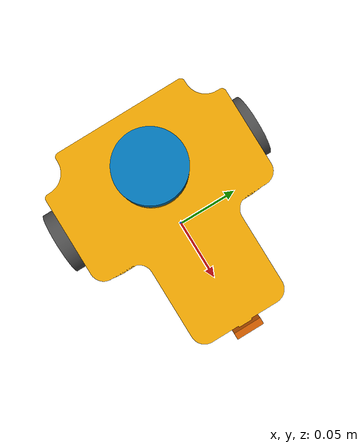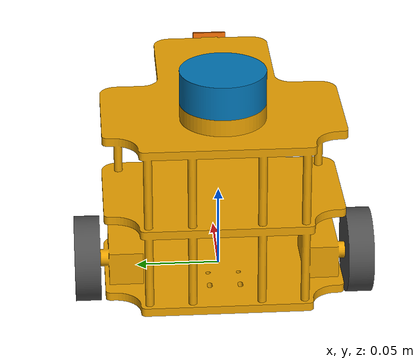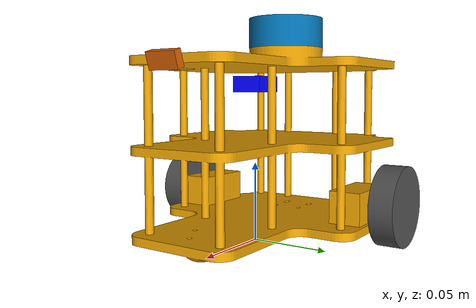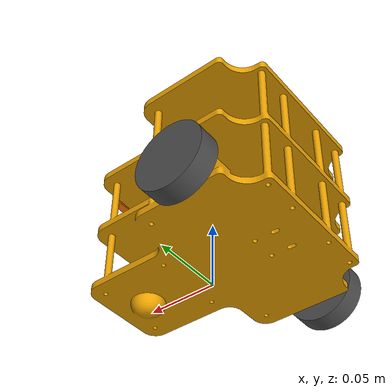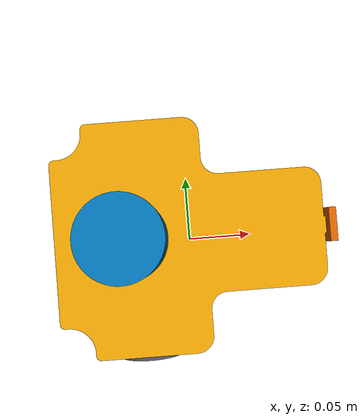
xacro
<?xml version="1.0"?>
<robot name="tcebot"
  xmlns:xacro="http://ros.org/wiki/xacro">

  <xacro:include filename="$(find tcebot_description)/urdf/common_properties.urdf.xacro" />
  <xacro:include filename="$(find tcebot_description)/urdf/wheel_right.urdf.xacro" />
  <xacro:include filename="$(find tcebot_description)/urdf/wheel_left.urdf.xacro" />
  <xacro:include filename="$(find tcebot_description)/urdf/rplidar.urdf.xacro" />
  <xacro:include filename="$(find tcebot_description)/urdf/camera.urdf.xacro" />

  <!-- Gazebo version -->
  <xacro:arg name="gazebo" default="ignition" />

  <!-- Namespace -->
  <xacro:arg name="namespace" default="" />

  <link name="base_link">
    <inertial>
      <origin xyz="-0.01345975744118259 9.019950050370612e-13 0.061742047216749814" rpy="0 0 0" />
      <mass value="2.49172678848136" />
      <inertia ixx="0.00765" iyy="0.008487" izz="0.007523" ixy="-0.0" iyz="0.0" ixz="0.000145" />
    </inertial>
    <visual>
      <origin xyz="0 0 0" rpy="0 0 0" />
      <geometry>
        <mesh filename="package://tcebot_description/meshes/base_link.stl" scale="0.001 0.001 0.001" />
      </geometry>
    </visual>
    <collision>
      <origin xyz="0 0 0" rpy="0 0 0" />
      <geometry>
        <mesh filename="package://tcebot_description/meshes/base_link.stl" scale="0.001 0.001 0.001" />
      </geometry>
    </collision>
  </link>

  <!-- IMU Link -->
  <link name="imu_link">
    <inertial>
      <origin xyz="0 0 0" rpy="0 0 0" />
      <mass value="0.05" />
      <inertia ixx="0.000001" iyy="0.000001" izz="0.000001" ixy="0.0" iyz="0.0" ixz="0.0" />
    </inertial>
    <visual>
      <origin xyz="0 0 0" rpy="0 0 0" />
      <geometry>
        <box size="0.02 0.02 0.01" />
      </geometry>
      <material name="blue">
        <color rgba="0.0 0.0 1.0 1.0"/>
      </material>
    </visual>
    <collision>
      <origin xyz="0 0 0" rpy="0 0 0" />
      <geometry>
        <box size="0.02 0.02 0.01" />
      </geometry>
    </collision>
  </link>

  <!-- IMU Joint (Fixed to Base Link) -->
  <joint name="imu_joint" type="fixed">
    <parent link="base_link"/>
    <child link="imu_link"/>
    <origin xyz="0 0 0.1" rpy="0 0 0"/>
  </joint>

  <xacro:wheel_right gazebo="$(arg gazebo)" />
  <xacro:wheel_left gazebo="$(arg gazebo)" />

  <xacro:rplidar gazebo="$(arg gazebo)" />

  <xacro:camera gazebo="$(arg gazebo)" />

  <gazebo reference="base_link">
    <xacro:material_lightgray />
  </gazebo>

  <gazebo reference="left_wheel_link">
    <xacro:material_black />
  </gazebo>

  <gazebo reference="right_wheel_link">
    <xacro:material_black />
  </gazebo>

  <gazebo>
    <plugin filename="gz-sim-diff-drive-system" name="gz::sim::systems::DiffDrive">
      <left_joint>left_wheel_joint</left_joint>
      <right_joint>right_wheel_joint</right_joint>
      <wheel_separation>0.233</wheel_separation>
      <wheel_radius>0.03575</wheel_radius>
      <max_linear_acceleration>2</max_linear_acceleration>
      <min_linear_acceleration>-2</min_linear_acceleration>
      <max_angular_acceleration>3</max_angular_acceleration>
      <min_angular_acceleration>-3</min_angular_acceleration>
      <max_linear_velocity>0.5</max_linear_velocity>
      <min_linear_velocity>-0.5</min_linear_velocity>
      <max_angular_velocity>2.0</max_angular_velocity>
      <min_angular_velocity>-2.0</min_angular_velocity>
      <topic>/cmd_vel</topic>
      <odom_topic>/odom</odom_topic>
      <tf_topic>tf</tf_topic>
      <frame_id>odom</frame_id>
      <child_frame_id>base_link</child_frame_id>
      <odom_publish_frequency>30</odom_publish_frequency>
    </plugin>

    <plugin filename="gz-sim-joint-state-publisher-system" name="gz::sim::systems::JointStatePublisher">
      <joint_name>left_wheel_joint</joint_name>
      <joint_name>right_wheel_joint</joint_name>
      <topic>joint_states</topic>
      <update_rate>30</update_rate>
    </plugin>

    <!-- IMU Sensor Plugin -->
    <plugin filename="gz-sim-imu-sensor-system" name="gz::sim::systems::ImuSensor">
      <sensor_name>imu_sensor</sensor_name>
      <topic>/imu</topic>
      <update_rate>50</update_rate>
      <parent_frame>imu_link</parent_frame>
      <child_frame>base_link</child_frame>
      <orientation>true</orientation>
      <angular_velocity>true</angular_velocity>
      <linear_acceleration>true</linear_acceleration>
    </plugin>
  </gazebo>

</robot>

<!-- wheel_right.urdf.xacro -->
<robot xmlns:xacro="http://ros.org/wiki/xacro">

    <xacro:macro name="wheel_right" params="gazebo">

        <link name="right_wheel_link">
            <inertial>
                <origin xyz="-5.21540644005114e-10 -0.007500001005828386 2.2351741638115818e-10"
                    rpy="0 0 0" />
                <mass value="0.2312015843501238" />
                <inertia ixx="4e-05" iyy="7.2e-05" izz="4e-05" ixy="0.0" iyz="-0.0" ixz="0.0" />
            </inertial>
            <visual>
                <origin xyz="0.035 0.0725 -0.025" rpy="0 0 0" />
                <geometry>
                    <mesh filename="package://tcebot_description/meshes/right_wheel.stl"
                        scale="0.001 0.001 0.001" />
                </geometry>
            </visual>
            <collision>
                <origin xyz="0.035 0.0725 -0.025" rpy="0 0 0" />
                <geometry>
                    <mesh filename="package://tcebot_description/meshes/right_wheel.stl"
                        scale="0.001 0.001 0.001" />
                </geometry>
            </collision>
        </link>

        <joint name="right_wheel_joint" type="continuous">
            <origin xyz="-0.035 -0.0725 0.025" rpy="0 0 0" />
            <parent link="base_link" />
            <child link="right_wheel_link" />
            <axis xyz="0.0 1.0 0.0" />
        </joint>

        <gazebo reference="right_wheel_link">
            <mu1>1.0</mu1>
            <mu2>1.0</mu2>
            <kp>1000000.0</kp>
            <kd>100.0</kd>
            <minDepth>0.0001</minDepth>
            <maxVel>1.0</maxVel>
            <material>Gazebo/DarkGrey</material>
        </gazebo>

    </xacro:macro>
</robot>

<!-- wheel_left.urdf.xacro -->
<robot xmlns:xacro="http://ros.org/wiki/xacro">

    <xacro:macro name="wheel_left" params="gazebo">

        <link name="left_wheel_link">
            <inertial>
                <origin xyz="-5.21540644005114e-10 0.007500001005828386 2.2351741638115818e-10"
                    rpy="0 0 0" />
                <mass value="0.2312015843501238" />
                <inertia ixx="4e-05" iyy="7.2e-05" izz="4e-05" ixy="-0.0" iyz="-0.0" ixz="0.0" />
            </inertial>
            <visual>
                <origin xyz="0.035 -0.0725 -0.025" rpy="0 0 0" />
                <geometry>
                    <mesh filename="package://tcebot_description/meshes/left_wheel.stl"
                        scale="0.001 0.001 0.001" />
                </geometry>
            </visual>
            <collision>
                <origin xyz="0.035 -0.0725 -0.025" rpy="0 0 0" />
                <geometry>
                    <mesh filename="package://tcebot_description/meshes/left_wheel.stl"
                        scale="0.001 0.001 0.001" />
                </geometry>
            </collision>
        </link>

        <joint name="left_wheel_joint" type="continuous">
            <origin xyz="-0.035 0.0725 0.025" rpy="0 0 0" />
            <parent link="base_link" />
            <child link="left_wheel_link" />
            <axis xyz="0.0 1.0 0.0" />
        </joint>

        <gazebo reference="left_wheel_link">
            <mu1>1.0</mu1>
            <mu2>1.0</mu2>
            <kp>1000000.0</kp>
            <kd>100.0</kd>
            <minDepth>0.0001</minDepth>
            <maxVel>1.0</maxVel>
            <material>Gazebo/DarkGrey</material>
        </gazebo>

    </xacro:macro>
</robot>

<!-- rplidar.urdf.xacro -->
<robot xmlns:xacro="http://ros.org/wiki/xacro">

  <xacro:macro name="rplidar" params="gazebo">

    <link name="rplidar_link">
      <inertial>
        <origin xyz="-5.58793539218172e-10 -3.618764437576268e-18 0.009999999999999981" rpy="0 0 0" />
        <mass value="0.3082687791334984" />
        <inertia ixx="5.8e-05" iyy="5.8e-05" izz="9.6e-05" ixy="-0.0" iyz="-0.0" ixz="0.0" />
      </inertial>
      <visual>
        <origin xyz="0.0375 -0.0 -0.125" rpy="0 0 0" />
        <geometry>
          <mesh filename="package://tcebot_description/meshes/lidar.stl" scale="0.001 0.001 0.001" />
        </geometry>
      </visual>
      <collision>
        <origin xyz="0.0375 -0.0 -0.125" rpy="0 0 0" />
        <geometry>
          <mesh filename="package://tcebot_description/meshes/lidar.stl" scale="0.001 0.001 0.001" />
        </geometry>
      </collision>
    </link>

    <joint name="rplidar_joint" type="fixed">
      <origin xyz="-0.0375 0.0 0.125" rpy="0 0 0" />
      <parent link="base_link" />
      <child link="rplidar_link" />
    </joint>

    <gazebo reference="rplidar_link">
      <sensor name="sensor_ray_front" type="gpu_lidar">
        <gz_frame_id>rplidar_link</gz_frame_id>
        <topic>scan</topic>
        <ray>
          <scan>
            <horizontal>
              <samples>720</samples>
              <resolution>1</resolution>
              <min_angle>-3.14159265</min_angle>
              <max_angle>3.14159265</max_angle>
            </horizontal>
          </scan>
          <range>
            <min>0.20</min>
            <max>12.0</max>
            <resolution>0.01</resolution>
          </range>
          <noise>
            <type>gaussian</type>
            <mean>0.0</mean>
            <stddev>0.01</stddev>
          </noise>
        </ray>
        <always_on>true</always_on>
        <visualize>true</visualize>
        <update_rate>10.0</update_rate>
      </sensor>
    </gazebo>

    <gazebo reference="rplidar_joint">
      <preserveFixedJoint>true</preserveFixedJoint>
    </gazebo>

  </xacro:macro>
</robot>

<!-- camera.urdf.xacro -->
<robot xmlns:xacro="http://ros.org/wiki/xacro">

    <xacro:macro name="camera" params="gazebo">
        <xacro:include filename="$(find tcebot_description)/urdf/common_properties.urdf.xacro" />

        <link name="camera_link">
            <inertial>
                <origin xyz="0.002500001192092885 0.0 1.6763806315323038e-09" rpy="0 0 0" />
                <mass value="0.00785" />
                <inertia ixx="0.0" iyy="0.0" izz="0.0" ixy="0.0" iyz="0.0" ixz="-0.0" />
            </inertial>
            <visual>
                <origin xyz="-0.081 -0.0 -0.1125" rpy="0 0 0" />
                <geometry>
                    <mesh filename="package://tcebot_description/meshes/camera.stl"
                        scale="0.001 0.001 0.001" />
                </geometry>
            </visual>
            <collision>
                <origin xyz="-0.081 -0.0 -0.1125" rpy="0 0 0" />
                <geometry>
                    <mesh filename="package://tcebot_description/meshes/camera.stl"
                        scale="0.001 0.001 0.001" />
                </geometry>
            </collision>
        </link>

        <joint name="camera_joint" type="fixed">
            <origin xyz="0.081 0.0 0.1125" rpy="0 0.3 0" />
            <parent link="base_link" />
            <child link="camera_link" />
        </joint>

        <gazebo reference="camera_link">
            <sensor name="camera" type="camera">
                <gz_frame_id>camera_link</gz_frame_id>
                <pose>0.1 0 0 0 0 0</pose>
                <camera>
                    <horizontal_fov>1.047</horizontal_fov>
                    <image>
                        <width>640</width>
                        <height>480</height>
                    </image>
                    <clip>
                        <near>0.1</near>
                        <far>100</far>
                    </clip>
                    <distortion>
                        <k1>0.0</k1>
                        <k2>0.0</k2>
                        <k3>0.0</k3>
                        <p1>0.0</p1>
                        <p2>0.0</p2>
                    </distortion>
                </camera>
                <always_on>1</always_on>
                <update_rate>30</update_rate>
                <visualize>true</visualize>
            </sensor>
        </gazebo>

        <gazebo reference="camera_joint">
            <preserveFixedJoint>true</preserveFixedJoint>
        </gazebo>

    </xacro:macro>
</robot>
